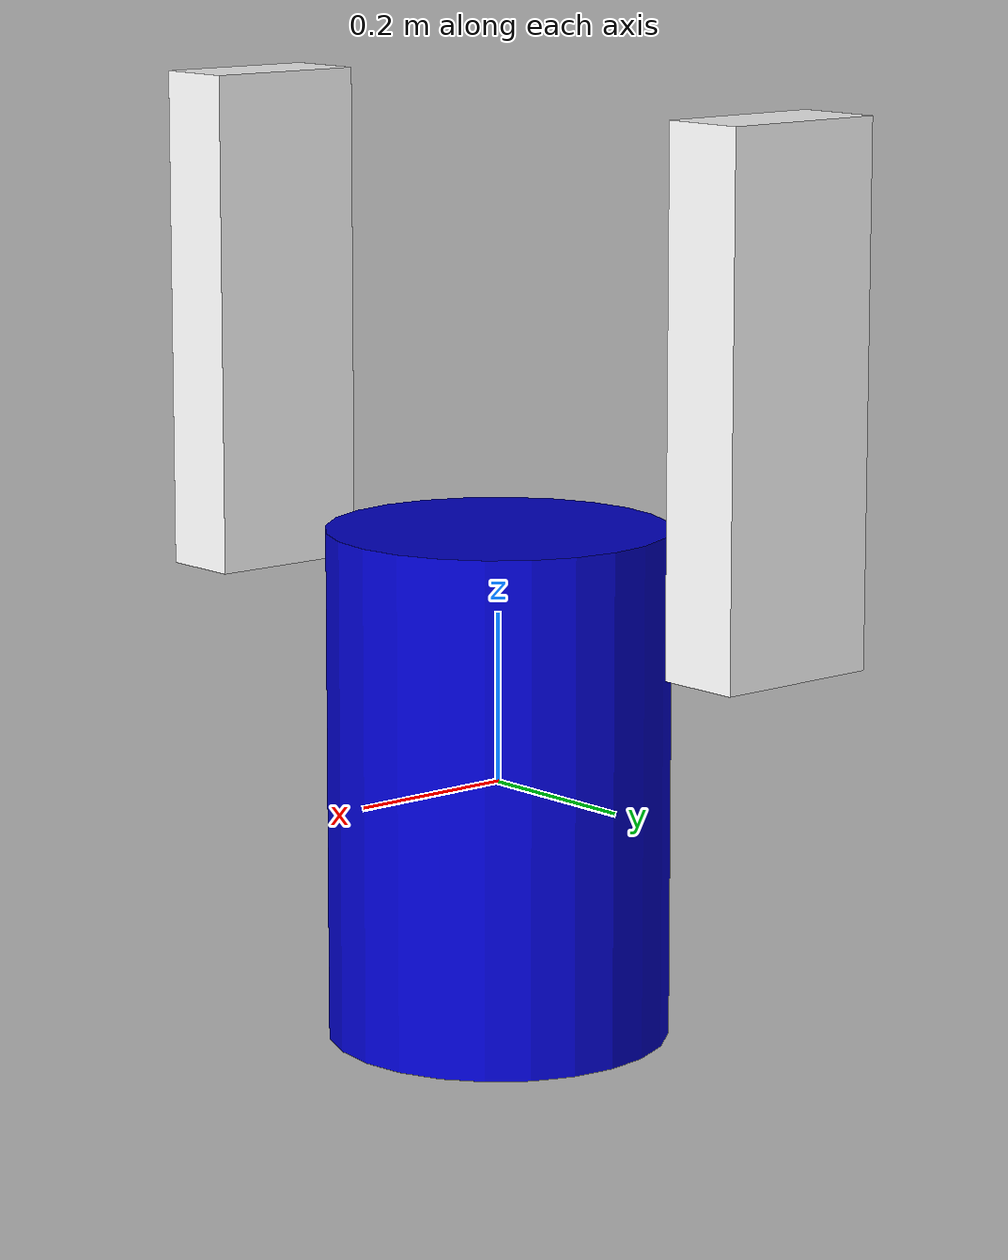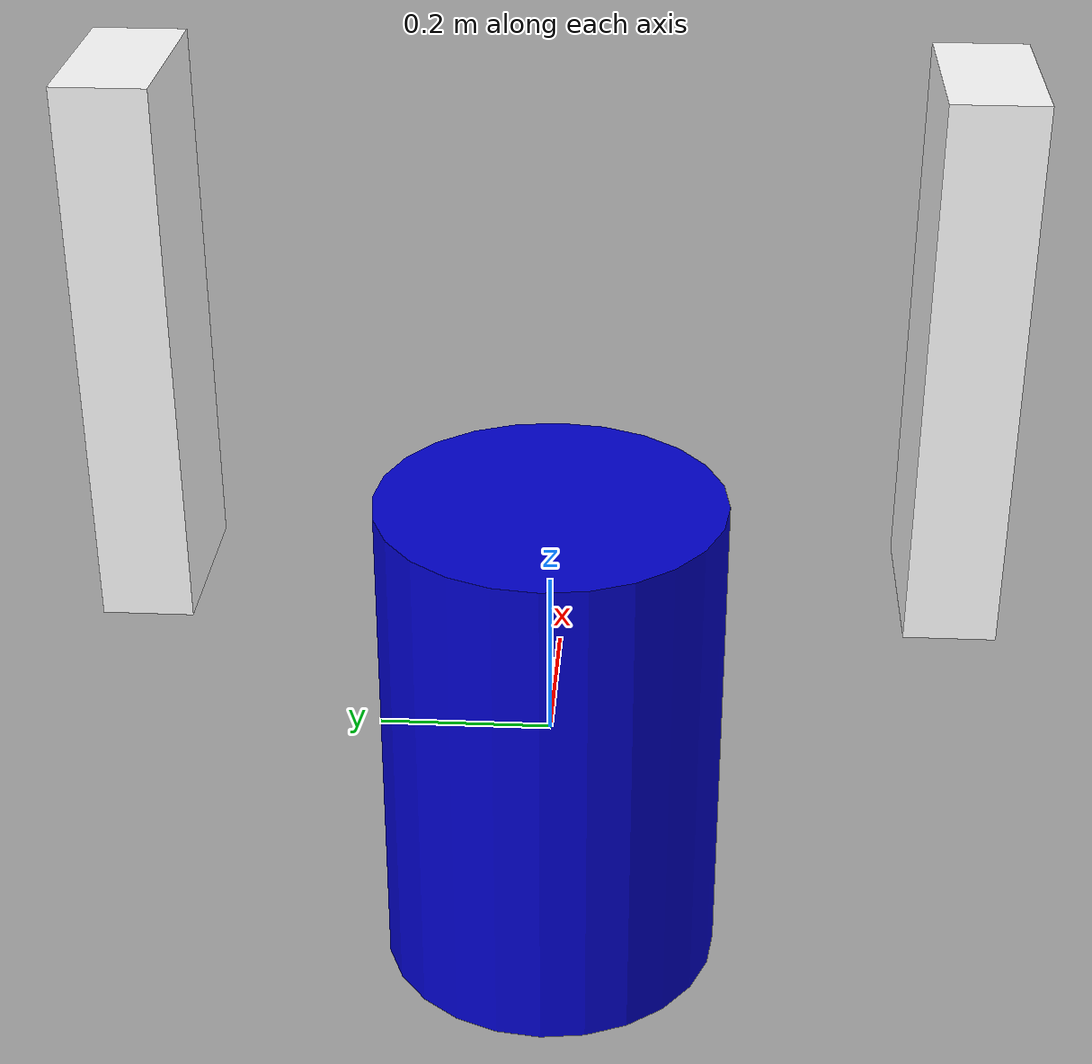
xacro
<?xml version="1.0"?>
<robot name="materials">

  <!-- 定义材质 -->
  <material name="blue">
    <color rgba="0 0 0.8 1"/>
  </material>

  <material name="white">
    <color rgba="1 1 1 1"/>
  </material>

  <!-- 定义基座 -->
  <xacro:macro name="base_link" params="color">
    <link name="base_link">
      <visual>
        <geometry>
          <cylinder length="0.6" radius="0.2"/>
        </geometry>
        <!-- 使用传入的材质参数 -->
        <material name="${color}"/>
      </visual>
    </link>
  </xacro:macro>

  <!-- 定义单个腿 -->
  <xacro:macro name="leg" params="name color xyz">
    <link name="${name}">
      <visual>
        <geometry>
          <box size="0.6 0.1 0.2"/>
        </geometry>
        <origin rpy="0 1.57075 0" xyz="${xyz}"/>
        <!-- 使用传入的材质参数 -->
        <material name="${color}"/>
      </visual>
    </link>
  </xacro:macro>

  <!-- 定义基座与腿之间的连接关系 -->
  <xacro:macro name="base_to_leg" params="parent child xyz">
    <joint name="base_to_${child}" type="fixed">
      <parent link="${parent}"/>
      <child link="${child}"/>
      <origin xyz="${xyz}"/>
    </joint>
  </xacro:macro>

  <!-- 使用宏来创建基座和腿 -->
  <xacro:base_link color="blue"/>
  <xacro:leg name="right_leg" color="white" xyz="0 -0.22 0.25"/>
  <xacro:leg name="left_leg" color="white" xyz="0 0.22 0.25"/>

  <!-- 创建基座与腿之间的连接关系 -->
  <xacro:base_to_leg parent="base_link" child="right_leg" xyz="0 -0.22 0.25"/>
  <xacro:base_to_leg parent="base_link" child="left_leg" xyz="0 0.22 0.25"/>

</robot>
